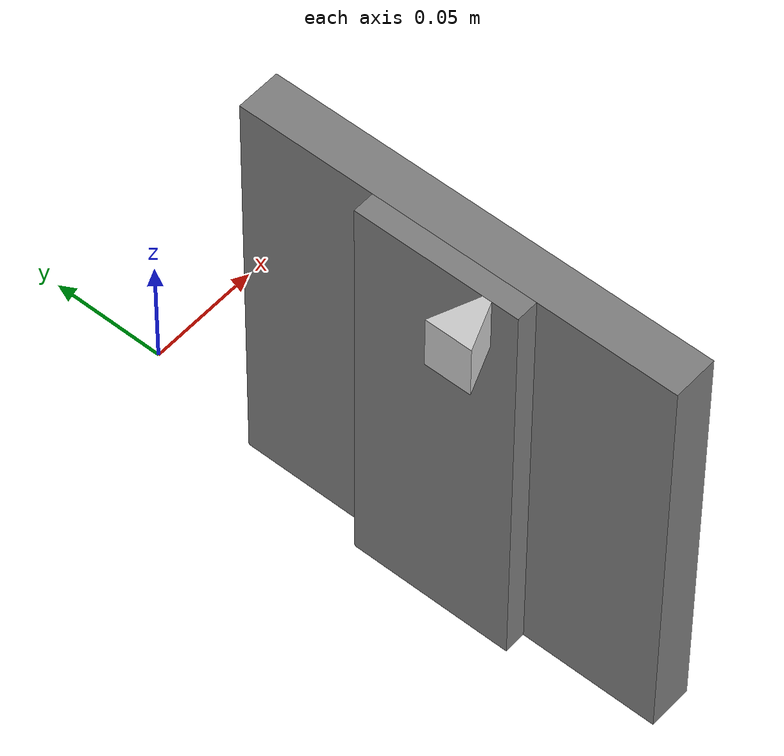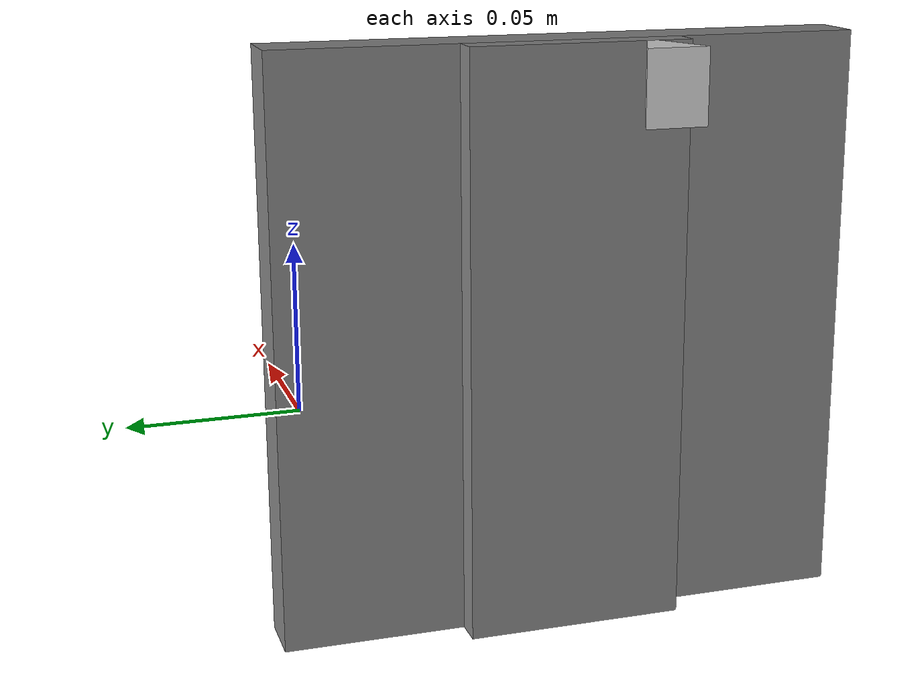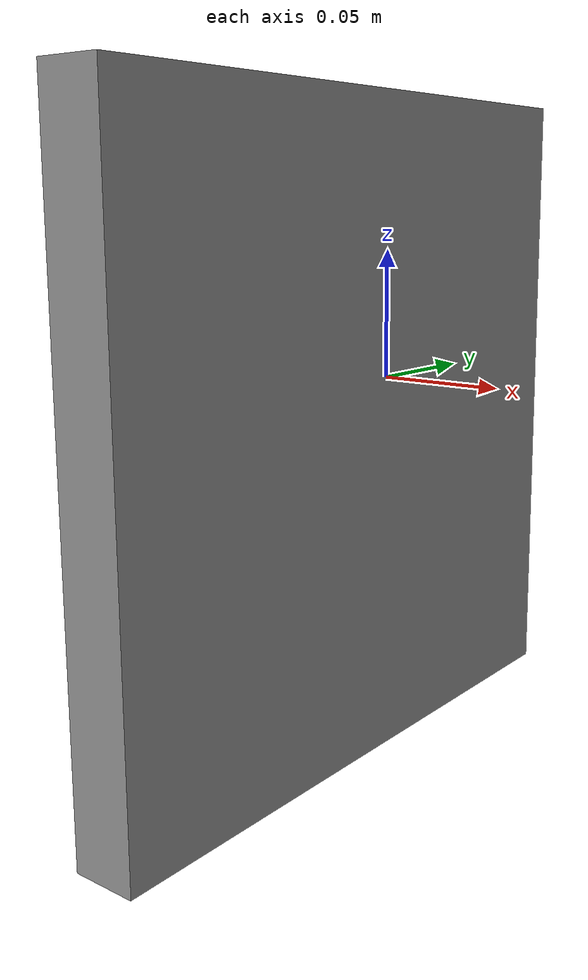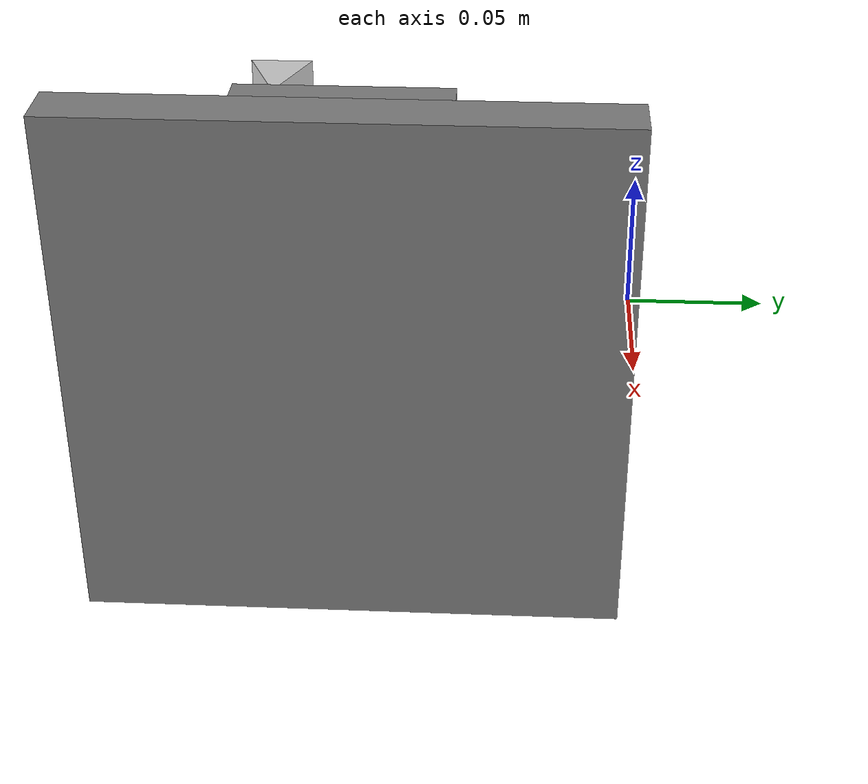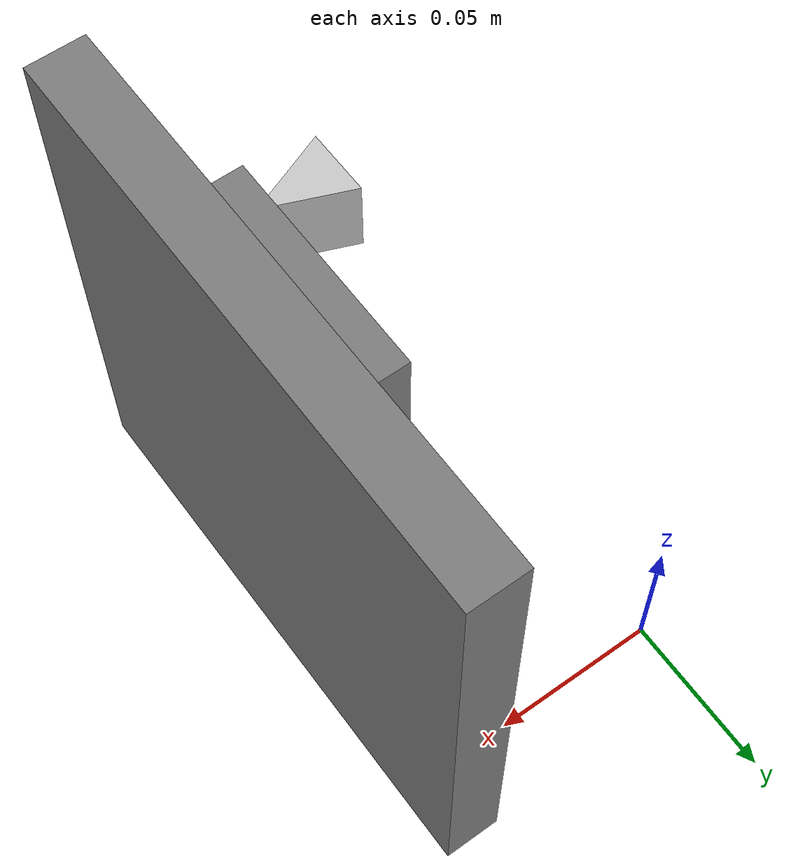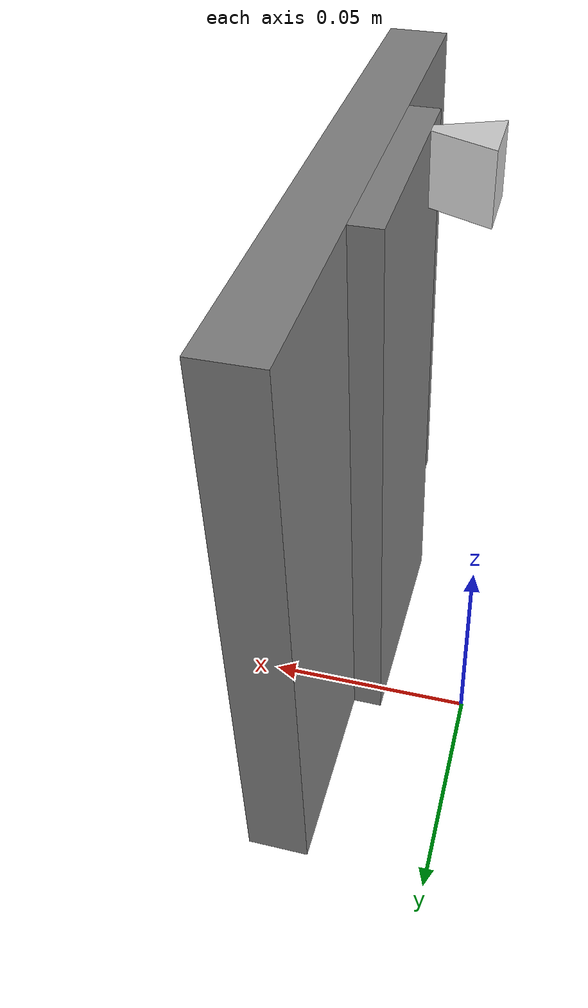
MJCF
<mujoco>
    <option integrator="implicitfast" impratio="20" noslip_iterations="5" cone="elliptic">
        <flag multiccd="enable"/>
    </option>

    <asset>

   <!-- wall-->
        <mesh name="wall1" file="join_assets/wall/Part Studio 1 - Part 1.stl" scale="0.001 0.001 0.001"/>
        <mesh name="wall2" file="join_assets/wall/Part Studio 1 - Part 2.stl" scale="0.001 0.001 0.001"/>
        <mesh name="wall3" file="join_assets/wall/Part Studio 1 - Part 3.stl" scale="0.001 0.001 0.001"/>
        <mesh name="wall4" file="join_assets/wall/Part Studio 1 - Part 4.stl" scale="0.001 0.001 0.001"/>

    </asset>
    <default>
        <default class="visual">
            <geom type="mesh" mass="0" group="2" material="black" contype="0" conaffinity="0"/>
        </default>
        <default class="collision">
            <geom group="3" type="capsule" condim="6" friction="1 5e-3 5e-4" solref=".01 1"/>
        </default>
    </default>

    <worldbody>

        <body name="wall" pos="0 -0.1 -0.1" euler="0 0  90">
            <joint name="wall_joint" type="free" damping="1000" armature="10"/>

            <geom type="mesh" mesh="wall1" rgba="0.5 0.5 0.5 1" group="1"/>
            <geom type="mesh" mesh="wall1" class="collision"  friction="0.8 0.1 0.1" />

            <geom type="mesh" mesh="wall2" rgba="0.8 0.8 0.8 1" name="wall_peg" group="1"/>
            <geom type="mesh" mesh="wall2" class="collision"  friction="0.8 0.1 0.1" />

            <geom type="mesh" mesh="wall4" rgba="0.5 0.5 0.5 1"  group="1"/>
            <geom type="mesh" mesh="wall4" class="collision"  friction="0.8 0.1 0.1"/>

        </body>

    </worldbody>
</mujoco>
